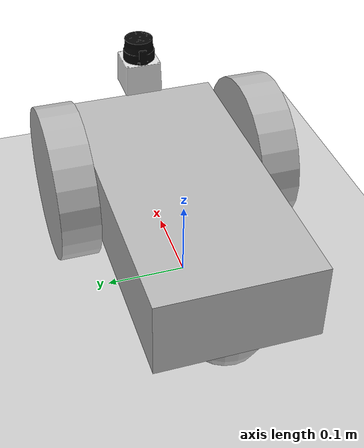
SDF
<sdf version="1.6">
 <world name="default">
  <light name="sun" type="directional">
   <pose>0 0 10 0 -0 0</pose>
   <diffuse>0.8 0.8 0.8 1</diffuse>
   <specular>0.1 0.1 0.1 1</specular>
   <attenuation>
    <range>1000</range>
    <constant>0.9</constant>
    <linear>0.01</linear>
    <quadratic>0.001</quadratic>
   </attenuation>
   <direction>-0.5 0.5 -1</direction>
  </light>
  <model name="ground_plane">
   <static>1</static>
   <link name="link">
    <collision name="collision">
     <geometry><plane><normal>0 0 1</normal><size>100 100</size></plane></geometry>
     <surface><friction><ode><mu>100</mu><mu2>50</mu2></ode></friction></surface>
    </collision>
    <visual name="visual">
     <cast_shadows>0</cast_shadows>
     <geometry><plane><normal>0 0 1</normal><size>100 100</size></plane></geometry>
     <material>
      <script><uri>file://media/materials/scripts/gazebo.material</uri><name>Gazebo/Grey</name></script>
     </material>
    </visual>
   </link>
  </model>
  <gravity>0 0 -9.8</gravity>
  <magnetic_field>6e-06 2.3e-05 -4.2e-05</magnetic_field>
  <atmosphere type="adiabatic"/>
  <physics name="default_physics" default="0" type="ode">
   <max_step_size>0.001</max_step_size>
   <real_time_factor>1</real_time_factor>
   <real_time_update_rate>1000</real_time_update_rate>
  </physics>
  <scene><ambient>0.4 0.4 0.4 1</ambient><background>0.7 0.7 0.7 1</background><shadows>1</shadows></scene>
  <spherical_coordinates>
   <surface_model>EARTH_WGS84</surface_model>
   <latitude_deg>0</latitude_deg>
   <longitude_deg>0</longitude_deg>
   <elevation>0</elevation>
   <heading_deg>0</heading_deg>
  </spherical_coordinates>
  <model name="laser">
   <self_collide>1</self_collide>
   <link name="chassis">
    <pose>0 0 .1 0 0 0</pose>
    <collision name="collision">
     <geometry><box><size>.4 .2 .1</size></box></geometry>
     <surface>
      <contact>
       <ode>
        <soft_cfm>0</soft_cfm>
        <soft_erp>0.2</soft_erp>
        <kp>1e+13</kp>
        <kd>1e+11</kd>
        <max_vel>-1</max_vel>
        <min_depth>0</min_depth>
       </ode>
      </contact>
     </surface>
    </collision>
    <visual name="visual"><geometry><box><size>.4 .2 .1</size></box></geometry></visual>
    <collision name="caster_collision">
     <pose>-0.15 0 -0.05 0 0 0</pose>
     <geometry><sphere><radius>.05</radius></sphere></geometry>
     <surface><friction><ode><mu>0</mu><mu2>0</mu2><slip1>1.0</slip1><slip2>1.0</slip2></ode></friction></surface>
    </collision>
    <visual name="caster_visual">
     <pose>-0.15 0 -0.05 0 0 0</pose>
     <geometry><sphere><radius>.05</radius></sphere></geometry>
    </visual>
   </link>
   <link name="left_wheel">
    <pose>0.1 0.13 0.1 0 1.5707 1.5707</pose>
    <collision name="collision">
     <geometry><cylinder><radius>.1</radius><length>.05</length></cylinder></geometry>
     <surface>
      <contact>
       <ode>
        <soft_cfm>0</soft_cfm>
        <soft_erp>0.2</soft_erp>
        <kp>1e+13</kp>
        <kd>1e+11</kd>
        <max_vel>-1</max_vel>
        <min_depth>0</min_depth>
       </ode>
      </contact>
     </surface>
    </collision>
    <visual name="visual">
     <geometry><cylinder><radius>.1</radius><length>.05</length></cylinder></geometry>
    </visual>
   </link>
   <link name="right_wheel">
    <pose>0.1 -0.13 0.1 0 1.5707 1.5707</pose>
    <collision name="collision">
     <geometry><cylinder><radius>.1</radius><length>.05</length></cylinder></geometry>
     <surface>
      <contact>
       <ode>
        <soft_cfm>0</soft_cfm>
        <soft_erp>0.2</soft_erp>
        <kp>1e+13</kp>
        <kd>1e+11</kd>
        <max_vel>-1</max_vel>
        <min_depth>0</min_depth>
       </ode>
      </contact>
     </surface>
    </collision>
    <visual name="visual">
     <geometry><cylinder><radius>.1</radius><length>.05</length></cylinder></geometry>
    </visual>
   </link>
   <joint type="revolute" name="left_wheel_hinge">
    <pose>0 0 -0.03 0 0 0</pose>
    <child>left_wheel</child>
    <parent>chassis</parent>
    <axis>
     <dynamics>
      <damping>1</damping>
      <friction>0</friction>
      <spring_reference>0</spring_reference>
      <spring_stiffness>0</spring_stiffness>
     </dynamics>
     <limit><lower>-3.14</lower><upper>3.14</upper><velocity>0.1</velocity></limit>
     <xyz>0 1 0</xyz>
     <use_parent_model_frame>1</use_parent_model_frame>
    </axis>
   </joint>
   <joint type="revolute" name="right_wheel_hinge">
    <pose>0 0 0.03 0 0 0</pose>
    <child>right_wheel</child>
    <parent>chassis</parent>
    <axis>
     <dynamics>
      <damping>1</damping>
      <friction>0</friction>
      <spring_reference>0</spring_reference>
      <spring_stiffness>0</spring_stiffness>
     </dynamics>
     <limit><lower>-3.14</lower><upper>3.14</upper><velocity>0.1</velocity></limit>
     <xyz>0 1 0</xyz>
     <use_parent_model_frame>1</use_parent_model_frame>
    </axis>
   </joint>
   <include><uri>model://hokuyo</uri><pose>0.2 0 0.2 0 0 0</pose></include>
   <joint name="hokuyo_joint" type="fixed"><child>hokuyo::link</child><parent>chassis</parent></joint>
  </model>
 </world>
</sdf>

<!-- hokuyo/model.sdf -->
<sdf version="1.4">
  <model name="hokuyo">
    <link name="link">
      <inertial>
        <mass>0.1</mass>
      </inertial>
      <visual name="visual">
        <geometry>
          <mesh>
            <uri>model://hokuyo/meshes/hokuyo.dae</uri>
          </mesh>
        </geometry>
      </visual>
      <sensor name="laser" type="ray">
        <pose>0.01 0 0.03 0 -0 0</pose>
        <ray>
          <scan>
            <horizontal>
              <samples>640</samples>
              <resolution>1</resolution>
              <min_angle>-2.26889</min_angle>
              <max_angle>2.268899</max_angle>
            </horizontal>
          </scan>
          <range>
            <min>0.08</min>
            <max>10</max>
            <resolution>0.01</resolution>
          </range>
        </ray>
        <plugin name="laser" filename="libRayPlugin.so" />
        <always_on>1</always_on>
        <update_rate>30</update_rate>
        <visualize>true</visualize>
      </sensor>
    </link>
  </model>
</sdf>
